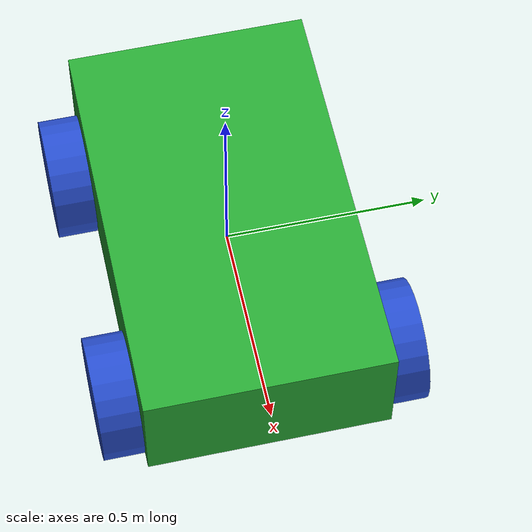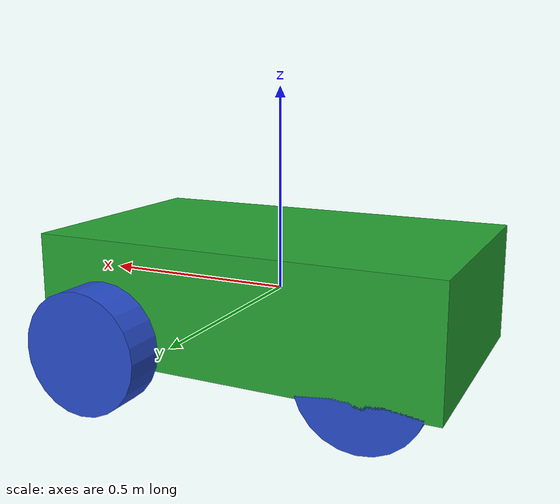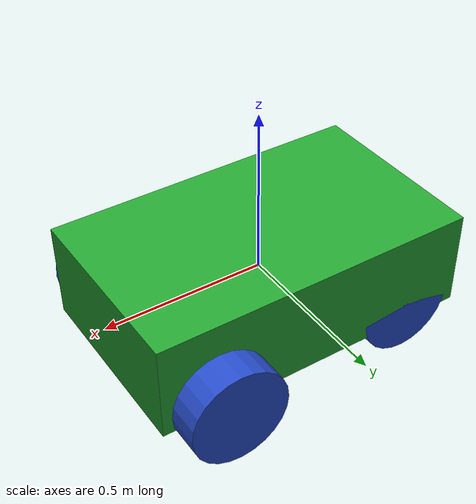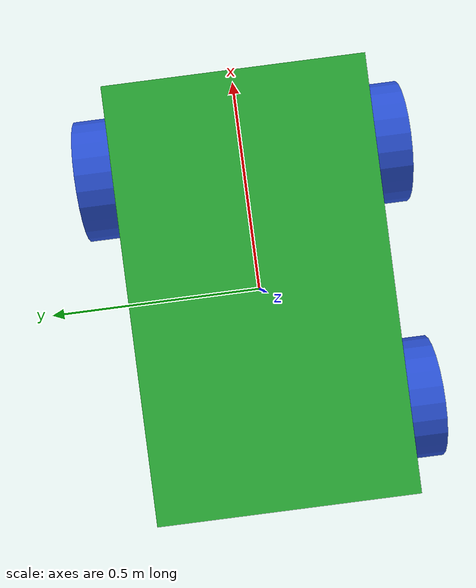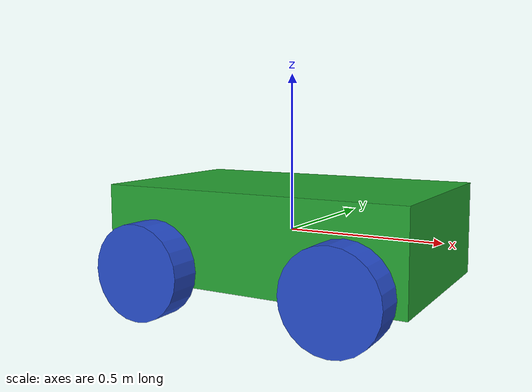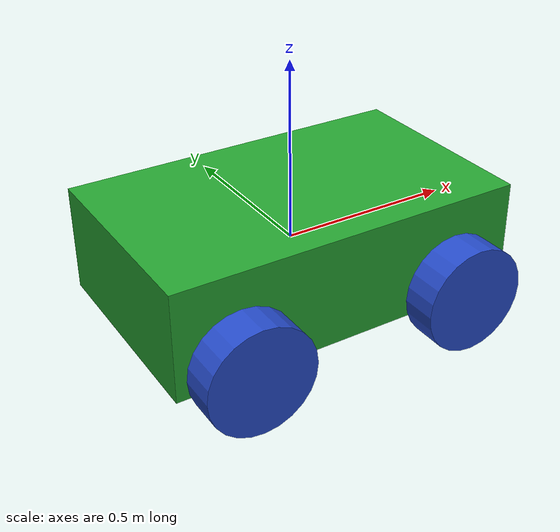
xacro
<?xml version="1.0"?>

<robot name="differential_drive_robot" xmlns:xacro="http://www.ros.org/wiki/xacro">

<!-- body dimmension parameters-->
<xacro:property name="body_link_x_dim" value="1"/>
<xacro:property name="body_link_y_dim" value="0.6"/>
<xacro:property name="body_link_z_dim" value="0.3"/>

<!-- wheel dimmension parameters-->
<xacro:property name="wheel_link_radius" value="0.15"/>
<xacro:property name="wheel_link_length" value="0.1"/>
<xacro:property name="wheel_link_z_location" value="-0.1"/>

<!-- material density parameters-->
<xacro:property name="body_density" value="2710.0"/>
<xacro:property name="wheel_density" value="2710.0"/>

<!-- pi constant-->
<xacro:property name="pi_const" value="3.141"/>

<!-- robot body and wheel mass -->
<xacro:property name="body_mass" value="${body_density*body_link_x_dim*body_link_y_dim*body_link_z_dim}"/>
<xacro:property name="wheel_mass" value="${wheel_density*pi_const*wheel_link_radius*wheel_link_radius*wheel_link_length}"/>

<!-- moment of inertia of the wheel parameters-->
<xacro:property name="Iz_wheel" value="${0.5*wheel_mass*wheel_link_radius*wheel_link_radius}"/>
<xacro:property name="I_wheel" value="${(1.0/12.0)*wheel_mass*(3.0*wheel_link_radius*wheel_link_radius+wheel_link_length*wheel_link_length)}"/>

<!-- moment of inertia of the wheel definition-->
<xacro:macro name="inertia_wheel">
    <inertial>
    <origin rpy="0 0 0" xyz="0 0 0"/>
    <mass value="${wheel_mass}"/>
    <inertia ixx="${I_wheel}" ixy="0.0" ixz="0.0" iyy="${I_wheel}" iyz="0" izz="${I_wheel}"/>
    </inertial>
</xacro:macro>

<!-- Bring in simulation data for Gazebo. -->
<xacro:include filename="$(find wheeled_robot)/model/robot.gazebo" />

<!-- LINK DEFINITION -->
<link name="dummy">
</link>

<joint name="dummy_joints" type="fixed">
    <parent link="dummy"/>
    <child link="body_link"/>
</joint>

<!-- BODY LINK OF THE ROBOT -->
<link name="body_link">
    <visual>
        <geometry>
            <box size="${body_link_x_dim} ${body_link_y_dim} ${body_link_z_dim}"/>
        </geometry>
    <origin rpy="0 0 0" xyz="0 0 0"/>
    </visual>

    <collision>
      <geometry>
        <!-- For simplicity, use a box collider instead of the pretty mesh -->
        <box size="${body_link_x_dim} ${body_link_y_dim} ${body_link_z_dim}"/>
      </geometry>
      <origin xyz="0 0 0" rpy="0 0 0" />
    </collision>

    <inertial>
        <origin rpy="0 0 0" xyz="0 0 0"/>
        <mass value="${body_mass}"/>
    <inertia
    ixx="${(1.0/12.0)*body_mass*(body_link_y_dim*body_link_y_dim+body_link_z_dim*body_link_z_dim)}"
    ixy="0.0"
    ixz="0.0"
    iyy="${(1.0/12.0)*body_mass*(body_link_x_dim*body_link_x_dim+body_link_z_dim*body_link_z_dim)}"
    iyz="0"
    izz="${(1.0/12.0)*body_mass*(body_link_y_dim*body_link_y_dim+body_link_x_dim*body_link_x_dim)}"/>
    </inertial>
</link>

<!-- BACK RIGHT WHEEL OF THE ROBOT -->
<joint name="wheel1_joint" type="continuous">
    <parent link="body_link"/>
    <child link="wheel1_link"/>
    <origin xyz="${-body_link_x_dim/2+1.2*wheel_link_radius} ${-body_link_y_dim/2-wheel_link_length/2} ${wheel_link_z_location}" rpy="0 0 0" />
    <axis xyz="0 1 0"/>
    <limit effort="1000" velocity="1000"/>
    <dynamics damping="1.0" friction="1.0"/>
</joint>

<link name="wheel1_link">
    <visual>
        <origin rpy="1.5708 0 0" xyz="0 0 0"/>
        <geometry>
            <cylinder length="${wheel_link_length}" radius="${wheel_link_radius}"/>
        </geometry>
    </visual>
    <collision>
        <origin rpy="1.5708 0 0" xyz="0 0 0"/>
        <geometry>
            <cylinder length="${wheel_link_length}" radius="${wheel_link_radius}"/>
        </geometry>
    </collision>

    <xacro:inertia_wheel/>
</link>

<!-- BACK LEFT WHEEL OF THE ROBOT -->
<joint name="wheel2_joint" type="continuous">
    <parent link="body_link"/>
    <child link="wheel2_link"/>
    <origin xyz="${-body_link_x_dim/2+1.2*wheel_link_radius} ${body_link_y_dim/2-wheel_link_length/2} ${wheel_link_z_location}" rpy="0 0 0" />
    <axis xyz="0 1 0"/>
    <limit effort="1000" velocity="1000"/>
    <dynamics damping="1.0" friction="1.0"/>
</joint>

<link name="wheel2_link">
    <visual>
        <origin rpy="1.5708 0 0" xyz="0 0 0"/>
        <geometry>
            <cylinder length="${wheel_link_length}" radius="${wheel_link_radius}"/>
        </geometry>
    </visual>

    <collision>
        <origin rpy="1.5708 0 0" xyz="0 0 0"/>
        <geometry>
            <cylinder length="${wheel_link_length}" radius="${wheel_link_radius}"/>
        </geometry>
    </collision>

    <xacro:inertia_wheel/>
</link>

<!-- FRONT RIGHT WHEEL OF THE ROBOT -->
<joint name="wheel3_joint" type="continuous">
    <parent link="body_link"/>
    <child link="wheel3_link"/>
    <origin xyz="${body_link_x_dim/2-1.2*wheel_link_radius} ${-body_link_y_dim/2-wheel_link_length/2} ${wheel_link_z_location}" rpy="0 0 0" />
    <axis xyz="0 1 0"/>
    <limit effort="1000" velocity="1000"/>
    <dynamics damping="1.0" friction="1.0"/>
</joint>

<link name="wheel3_link">
    <visual>
        <origin rpy="1.5708 0 0" xyz="0 0 0"/>
        <geometry>
            <cylinder length="${wheel_link_length}" radius="${wheel_link_radius}"/>
        </geometry>
    </visual>

    <collision>
        <origin rpy="1.5708 0 0" xyz="0 0 0"/>
        <geometry>
            <cylinder length="${wheel_link_length}" radius="${wheel_link_radius}"/>
        </geometry>
    </collision>

    <xacro:inertia_wheel/>
</link>

<!-- FRONT LEFT WHEEL OF THE ROBOT -->
<joint name="wheel4_joint" type="continuous">
    <parent link="body_link"/>
    <child link="wheel4_link"/>
    <origin xyz="${body_link_x_dim/2-1.2*wheel_link_radius} ${body_link_y_dim/2+wheel_link_length/2} ${wheel_link_z_location}" rpy="0 0 0" />
    <axis xyz="0 1 0"/>
    <limit effort="1000" velocity="1000"/>
    <dynamics damping="1.0" friction="1.0"/>
</joint>

<link name="wheel4_link">
    <visual>
        <origin rpy="1.5708 0 0" xyz="0 0 0"/>
        <geometry>
            <cylinder length="${wheel_link_length}" radius="${wheel_link_radius}"/>
        </geometry>
    </visual>

    <collision>
        <origin rpy="1.5708 0 0" xyz="0 0 0"/>
        <geometry>
            <cylinder length="${wheel_link_length}" radius="${wheel_link_radius}"/>
        </geometry>
    </collision>

    <xacro:inertia_wheel/>
</link>

</robot>
